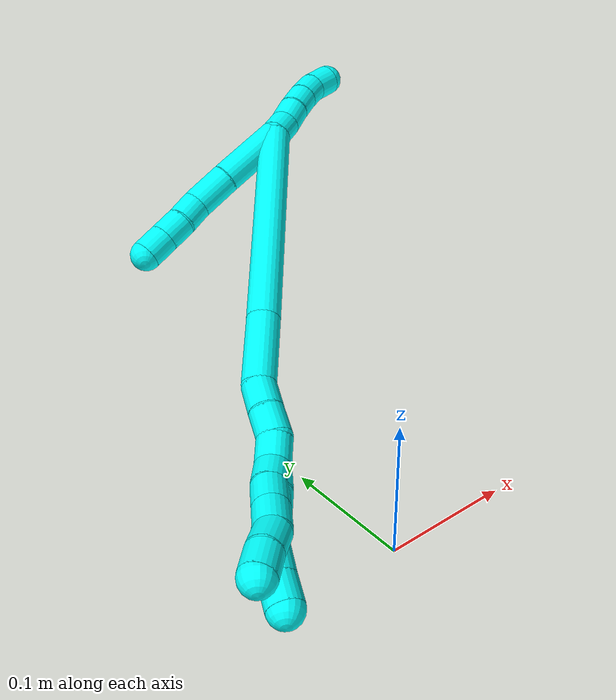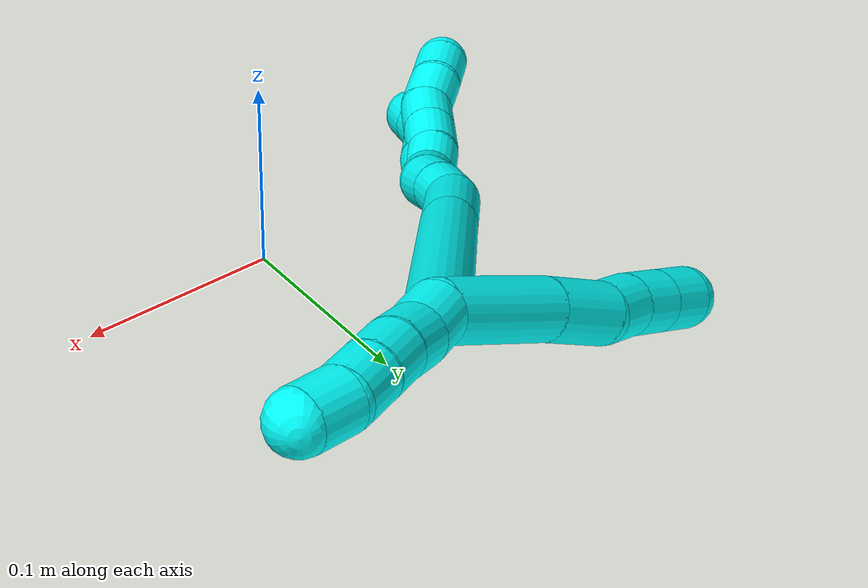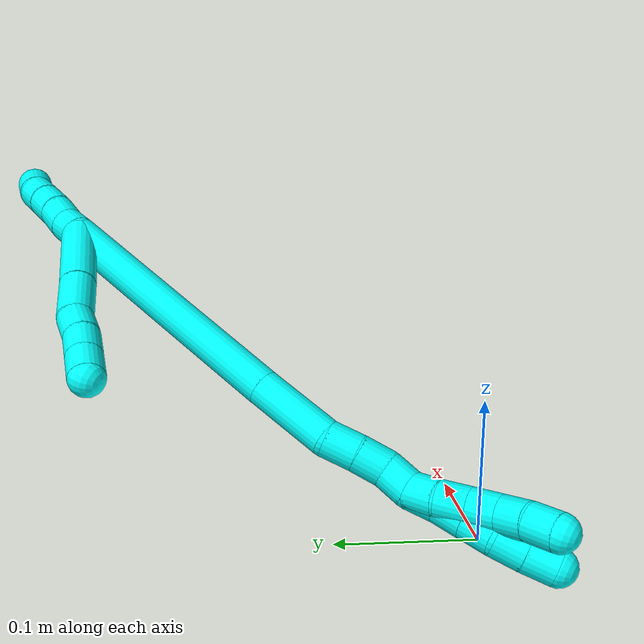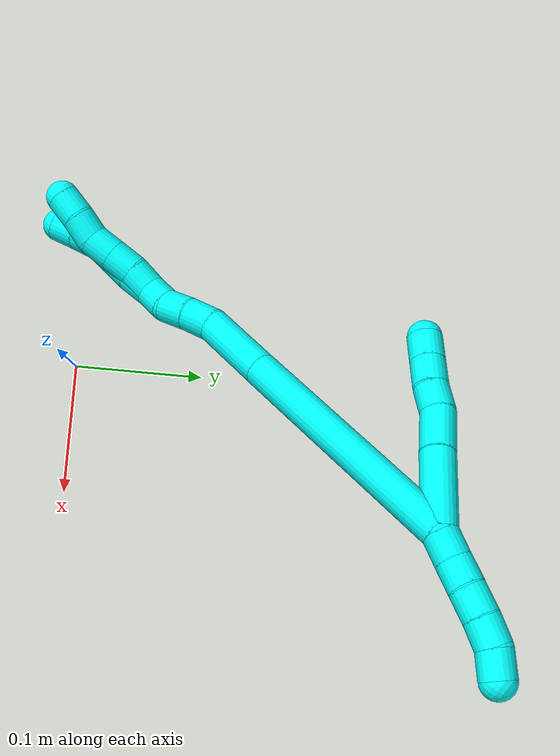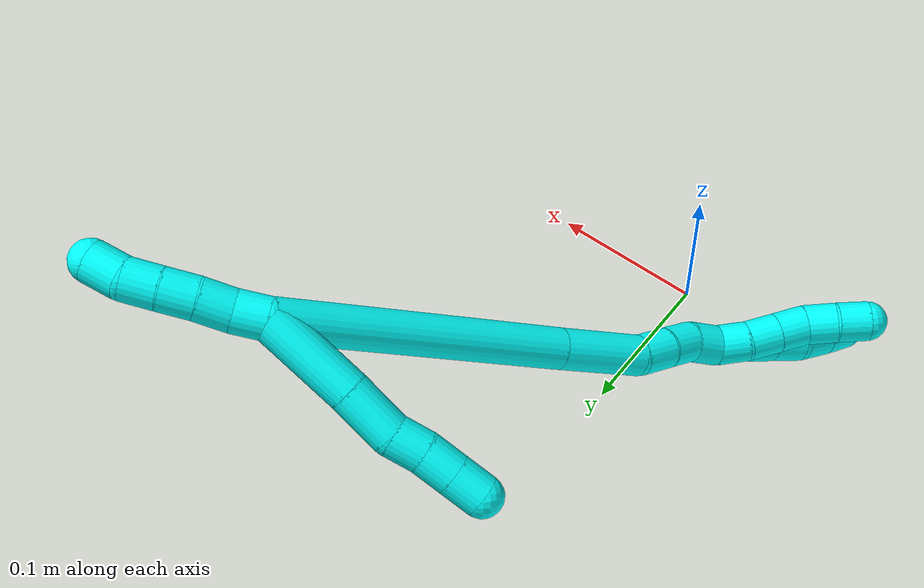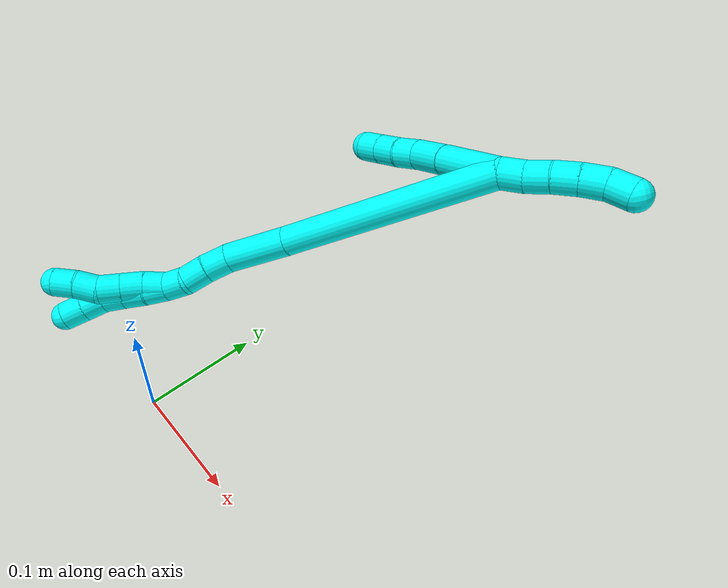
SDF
<sdf version="1.7">
 <world name="default">
  <model name="3">
   <static>0</static>
   <link name="3">
    <collision name="collision-cylinder-e_1_2_8">
     <pose>0.014991 -0.016819 -0.017584 2.37841 0.552167 1.22959</pose>
     <geometry><cylinder><radius>0.0125</radius><length>0.05716</length></cylinder></geometry>
     <surface>
      <friction><ode><mu>1.16</mu><mu2>1.16</mu2><slip1>0</slip1><slip2>0</slip2></ode></friction>
      <contact><ode><kp>1e+06</kp><kd>1</kd><max_vel>0</max_vel><min_depth>0.001</min_depth></ode></contact>
     </surface>
    </collision>
    <visual name="visual-cylinder-e_1_2_8">
     <pose>0.014991 -0.016819 -0.017584 2.37841 0.552167 1.22959</pose>
     <geometry><cylinder><radius>0.0125</radius><length>0.05716</length></cylinder></geometry>
     <material><ambient>0.003922 1 0.996078 1</ambient></material>
    </visual>
    <collision name="collision-cylinder-e_2_8_9">
     <pose>0.03819 -0.04404 -0.04475 2.31523 0.525843 1.10118</pose>
     <geometry><cylinder><radius>0.0125</radius><length>0.032703</length></cylinder></geometry>
     <surface>
      <friction><ode><mu>1.16</mu><mu2>1.16</mu2><slip1>0</slip1><slip2>0</slip2></ode></friction>
      <contact><ode><kp>1e+06</kp><kd>1</kd><max_vel>0</max_vel><min_depth>0.001</min_depth></ode></contact>
     </surface>
    </collision>
    <visual name="visual-cylinder-e_2_8_9">
     <pose>0.03819 -0.04404 -0.04475 2.31523 0.525843 1.10118</pose>
     <geometry><cylinder><radius>0.0125</radius><length>0.032703</length></cylinder></geometry>
     <material><ambient>0.003922 1 0.996078 1</ambient></material>
    </visual>
    <collision name="collision-cylinder-e_3_9_10">
     <pose>0.050812 -0.058867 -0.062198 2.6291 0.454876 1.44708</pose>
     <geometry><cylinder><radius>0.0125</radius><length>0.020094</length></cylinder></geometry>
     <surface>
      <friction><ode><mu>1.16</mu><mu2>1.16</mu2><slip1>0</slip1><slip2>0</slip2></ode></friction>
      <contact><ode><kp>1e+06</kp><kd>1</kd><max_vel>0</max_vel><min_depth>0.001</min_depth></ode></contact>
     </surface>
    </collision>
    <visual name="visual-cylinder-e_3_9_10">
     <pose>0.050812 -0.058867 -0.062198 2.6291 0.454876 1.44708</pose>
     <geometry><cylinder><radius>0.0125</radius><length>0.020094</length></cylinder></geometry>
     <material><ambient>0.003922 1 0.996078 1</ambient></material>
    </visual>
    <collision name="collision-cylinder-e_4_10_11">
     <pose>0.060188 -0.068606 -0.076955 2.48477 0.518254 1.3223</pose>
     <geometry><cylinder><radius>0.0125</radius><length>0.020034</length></cylinder></geometry>
     <surface>
      <friction><ode><mu>1.16</mu><mu2>1.16</mu2><slip1>0</slip1><slip2>0</slip2></ode></friction>
      <contact><ode><kp>1e+06</kp><kd>1</kd><max_vel>0</max_vel><min_depth>0.001</min_depth></ode></contact>
     </surface>
    </collision>
    <visual name="visual-cylinder-e_4_10_11">
     <pose>0.060188 -0.068606 -0.076955 2.48477 0.518254 1.3223</pose>
     <geometry><cylinder><radius>0.0125</radius><length>0.020034</length></cylinder></geometry>
     <material><ambient>0.003922 1 0.996078 1</ambient></material>
    </visual>
    <collision name="collision-cylinder-e_5_11_6">
     <pose>0.070114 -0.079226 -0.090723 2.48436 0.519189 1.32349</pose>
     <geometry><cylinder><radius>0.0125</radius><length>0.020009</length></cylinder></geometry>
     <surface>
      <friction><ode><mu>1.16</mu><mu2>1.16</mu2><slip1>0</slip1><slip2>0</slip2></ode></friction>
      <contact><ode><kp>1e+06</kp><kd>1</kd><max_vel>0</max_vel><min_depth>0.001</min_depth></ode></contact>
     </surface>
    </collision>
    <visual name="visual-cylinder-e_5_11_6">
     <pose>0.070114 -0.079226 -0.090723 2.48436 0.519189 1.32349</pose>
     <geometry><cylinder><radius>0.0125</radius><length>0.020009</length></cylinder></geometry>
     <material><ambient>0.003922 1 0.996078 1</ambient></material>
    </visual>
    <collision name="collision-cylinder-e_1_2_12">
     <pose>-0.004191 0.001687 0.008921 -0.186862 -0.432462 0.041161</pose>
     <geometry><cylinder><radius>0.0125</radius><length>0.02</length></cylinder></geometry>
     <surface>
      <friction><ode><mu>1.16</mu><mu2>1.16</mu2><slip1>0</slip1><slip2>0</slip2></ode></friction>
      <contact><ode><kp>1e+06</kp><kd>1</kd><max_vel>0</max_vel><min_depth>0.001</min_depth></ode></contact>
     </surface>
    </collision>
    <visual name="visual-cylinder-e_1_2_12">
     <pose>-0.004191 0.001687 0.008921 -0.186862 -0.432462 0.041161</pose>
     <geometry><cylinder><radius>0.0125</radius><length>0.02</length></cylinder></geometry>
     <material><ambient>0.003922 1 0.996078 1</ambient></material>
    </visual>
    <collision name="collision-cylinder-e_2_12_13">
     <pose>-0.011637 0.006643 0.026715 -0.353089 -0.331538 0.059677</pose>
     <geometry><cylinder><radius>0.0125</radius><length>0.02</length></cylinder></geometry>
     <surface>
      <friction><ode><mu>1.16</mu><mu2>1.16</mu2><slip1>0</slip1><slip2>0</slip2></ode></friction>
      <contact><ode><kp>1e+06</kp><kd>1</kd><max_vel>0</max_vel><min_depth>0.001</min_depth></ode></contact>
     </surface>
    </collision>
    <visual name="visual-cylinder-e_2_12_13">
     <pose>-0.011637 0.006643 0.026715 -0.353089 -0.331538 0.059677</pose>
     <geometry><cylinder><radius>0.0125</radius><length>0.02</length></cylinder></geometry>
     <material><ambient>0.003922 1 0.996078 1</ambient></material>
    </visual>
    <collision name="collision-cylinder-e_3_13_14">
     <pose>-0.018691 0.012179 0.044555 -0.247506 -0.38963 0.049078</pose>
     <geometry><cylinder><radius>0.0125</radius><length>0.02</length></cylinder></geometry>
     <surface>
      <friction><ode><mu>1.16</mu><mu2>1.16</mu2><slip1>0</slip1><slip2>0</slip2></ode></friction>
      <contact><ode><kp>1e+06</kp><kd>1</kd><max_vel>0</max_vel><min_depth>0.001</min_depth></ode></contact>
     </surface>
    </collision>
    <visual name="visual-cylinder-e_3_13_14">
     <pose>-0.018691 0.012179 0.044555 -0.247506 -0.38963 0.049078</pose>
     <geometry><cylinder><radius>0.0125</radius><length>0.02</length></cylinder></geometry>
     <material><ambient>0.003922 1 0.996078 1</ambient></material>
    </visual>
    <collision name="collision-cylinder-e_4_14_15">
     <pose>-0.027016 0.016412 0.062221 -0.222356 -0.46977 0.053418</pose>
     <geometry><cylinder><radius>0.0125</radius><length>0.02</length></cylinder></geometry>
     <surface>
      <friction><ode><mu>1.16</mu><mu2>1.16</mu2><slip1>0</slip1><slip2>0</slip2></ode></friction>
      <contact><ode><kp>1e+06</kp><kd>1</kd><max_vel>0</max_vel><min_depth>0.001</min_depth></ode></contact>
     </surface>
    </collision>
    <visual name="visual-cylinder-e_4_14_15">
     <pose>-0.027016 0.016412 0.062221 -0.222356 -0.46977 0.053418</pose>
     <geometry><cylinder><radius>0.0125</radius><length>0.02</length></cylinder></geometry>
     <material><ambient>0.003922 1 0.996078 1</ambient></material>
    </visual>
    <collision name="collision-cylinder-e_5_15_5">
     <pose>-0.038084 0.021313 0.077889 -0.398531 -0.71305 0.150143</pose>
     <geometry><cylinder><radius>0.0125</radius><length>0.02</length></cylinder></geometry>
     <surface>
      <friction><ode><mu>1.16</mu><mu2>1.16</mu2><slip1>0</slip1><slip2>0</slip2></ode></friction>
      <contact><ode><kp>1e+06</kp><kd>1</kd><max_vel>0</max_vel><min_depth>0.001</min_depth></ode></contact>
     </surface>
    </collision>
    <visual name="visual-cylinder-e_5_15_5">
     <pose>-0.038084 0.021313 0.077889 -0.398531 -0.71305 0.150143</pose>
     <geometry><cylinder><radius>0.0125</radius><length>0.02</length></cylinder></geometry>
     <material><ambient>0.003922 1 0.996078 1</ambient></material>
    </visual>
    <collision name="collision-cylinder-e_1_2_16">
     <pose>-0.001527 -0.022756 -0.08793 2.88835 -0.016809 -0.131852</pose>
     <geometry><cylinder><radius>0.0125</radius><length>0.18168</length></cylinder></geometry>
     <surface>
      <friction><ode><mu>1.16</mu><mu2>1.16</mu2><slip1>0</slip1><slip2>0</slip2></ode></friction>
      <contact><ode><kp>1e+06</kp><kd>1</kd><max_vel>0</max_vel><min_depth>0.001</min_depth></ode></contact>
     </surface>
    </collision>
    <visual name="visual-cylinder-e_1_2_16">
     <pose>-0.001527 -0.022756 -0.08793 2.88835 -0.016809 -0.131852</pose>
     <geometry><cylinder><radius>0.0125</radius><length>0.18168</length></cylinder></geometry>
     <material><ambient>0.003922 1 0.996078 1</ambient></material>
    </visual>
    <collision name="collision-cylinder-e_2_16_17">
     <pose>-0.003062 -0.051895 -0.202763 2.90867 -0.000311 -0.00266</pose>
     <geometry><cylinder><radius>0.0125</radius><length>0.055298</length></cylinder></geometry>
     <surface>
      <friction><ode><mu>1.16</mu><mu2>1.16</mu2><slip1>0</slip1><slip2>0</slip2></ode></friction>
      <contact><ode><kp>1e+06</kp><kd>1</kd><max_vel>0</max_vel><min_depth>0.001</min_depth></ode></contact>
     </surface>
    </collision>
    <visual name="visual-cylinder-e_2_16_17">
     <pose>-0.003062 -0.051895 -0.202763 2.90867 -0.000311 -0.00266</pose>
     <geometry><cylinder><radius>0.0125</radius><length>0.055298</length></cylinder></geometry>
     <material><ambient>0.003922 1 0.996078 1</ambient></material>
    </visual>
    <collision name="collision-cylinder-e_3_17_18">
     <pose>-0.005444 -0.058473 -0.240276 3.12307 -0.219996 -2.97423</pose>
     <geometry><cylinder><radius>0.0125</radius><length>0.021748</length></cylinder></geometry>
     <surface>
      <friction><ode><mu>1.16</mu><mu2>1.16</mu2><slip1>0</slip1><slip2>0</slip2></ode></friction>
      <contact><ode><kp>1e+06</kp><kd>1</kd><max_vel>0</max_vel><min_depth>0.001</min_depth></ode></contact>
     </surface>
    </collision>
    <visual name="visual-cylinder-e_3_17_18">
     <pose>-0.005444 -0.058473 -0.240276 3.12307 -0.219996 -2.97423</pose>
     <geometry><cylinder><radius>0.0125</radius><length>0.021748</length></cylinder></geometry>
     <material><ambient>0.003922 1 0.996078 1</ambient></material>
    </visual>
    <collision name="collision-cylinder-e_4_18_19">
     <pose>-0.010853 -0.059478 -0.260804 3.06034 -0.29618 -2.60956</pose>
     <geometry><cylinder><radius>0.0125</radius><length>0.020807</length></cylinder></geometry>
     <surface>
      <friction><ode><mu>1.16</mu><mu2>1.16</mu2><slip1>0</slip1><slip2>0</slip2></ode></friction>
      <contact><ode><kp>1e+06</kp><kd>1</kd><max_vel>0</max_vel><min_depth>0.001</min_depth></ode></contact>
     </surface>
    </collision>
    <visual name="visual-cylinder-e_4_18_19">
     <pose>-0.010853 -0.059478 -0.260804 3.06034 -0.29618 -2.60956</pose>
     <geometry><cylinder><radius>0.0125</radius><length>0.020807</length></cylinder></geometry>
     <material><ambient>0.003922 1 0.996078 1</ambient></material>
    </visual>
    <collision name="collision-cylinder-e_5_19_1">
     <pose>-0.013999 -0.06314 -0.280548 2.85887 -0.010684 -0.075039</pose>
     <geometry><cylinder><radius>0.0125</radius><length>0.020466</length></cylinder></geometry>
     <surface>
      <friction><ode><mu>1.16</mu><mu2>1.16</mu2><slip1>0</slip1><slip2>0</slip2></ode></friction>
      <contact><ode><kp>1e+06</kp><kd>1</kd><max_vel>0</max_vel><min_depth>0.001</min_depth></ode></contact>
     </surface>
    </collision>
    <visual name="visual-cylinder-e_5_19_1">
     <pose>-0.013999 -0.06314 -0.280548 2.85887 -0.010684 -0.075039</pose>
     <geometry><cylinder><radius>0.0125</radius><length>0.020466</length></cylinder></geometry>
     <material><ambient>0.003922 1 0.996078 1</ambient></material>
    </visual>
    <collision name="collision-cylinder-e_1_1_20">
     <pose>-0.014042 -0.066019 -0.300374 3.1391 0.006647 2.42296</pose>
     <geometry><cylinder><radius>0.0125</radius><length>0.02</length></cylinder></geometry>
     <surface>
      <friction><ode><mu>1.16</mu><mu2>1.16</mu2><slip1>0</slip1><slip2>0</slip2></ode></friction>
      <contact><ode><kp>1e+06</kp><kd>1</kd><max_vel>0</max_vel><min_depth>0.001</min_depth></ode></contact>
     </surface>
    </collision>
    <visual name="visual-cylinder-e_1_1_20">
     <pose>-0.014042 -0.066019 -0.300374 3.1391 0.006647 2.42296</pose>
     <geometry><cylinder><radius>0.0125</radius><length>0.02</length></cylinder></geometry>
     <material><ambient>0.003922 1 0.996078 1</ambient></material>
    </visual>
    <collision name="collision-cylinder-e_2_20_21">
     <pose>-0.013182 -0.067056 -0.32029 3.03989 0.079461 1.32613</pose>
     <geometry><cylinder><radius>0.0125</radius><length>0.02</length></cylinder></geometry>
     <surface>
      <friction><ode><mu>1.16</mu><mu2>1.16</mu2><slip1>0</slip1><slip2>0</slip2></ode></friction>
      <contact><ode><kp>1e+06</kp><kd>1</kd><max_vel>0</max_vel><min_depth>0.001</min_depth></ode></contact>
     </surface>
    </collision>
    <visual name="visual-cylinder-e_2_20_21">
     <pose>-0.013182 -0.067056 -0.32029 3.03989 0.079461 1.32613</pose>
     <geometry><cylinder><radius>0.0125</radius><length>0.02</length></cylinder></geometry>
     <material><ambient>0.003922 1 0.996078 1</ambient></material>
    </visual>
    <collision name="collision-cylinder-e_3_21_22">
     <pose>-0.011716 -0.068986 -0.340142 3.04949 0.06728 1.26144</pose>
     <geometry><cylinder><radius>0.0125</radius><length>0.02</length></cylinder></geometry>
     <surface>
      <friction><ode><mu>1.16</mu><mu2>1.16</mu2><slip1>0</slip1><slip2>0</slip2></ode></friction>
      <contact><ode><kp>1e+06</kp><kd>1</kd><max_vel>0</max_vel><min_depth>0.001</min_depth></ode></contact>
     </surface>
    </collision>
    <visual name="visual-cylinder-e_3_21_22">
     <pose>-0.011716 -0.068986 -0.340142 3.04949 0.06728 1.26144</pose>
     <geometry><cylinder><radius>0.0125</radius><length>0.02</length></cylinder></geometry>
     <material><ambient>0.003922 1 0.996078 1</ambient></material>
    </visual>
    <collision name="collision-cylinder-e_4_22_23">
     <pose>-0.013007 -0.070379 -0.359871 3.09312 -0.197629 -2.66192</pose>
     <geometry><cylinder><radius>0.0125</radius><length>0.02</length></cylinder></geometry>
     <surface>
      <friction><ode><mu>1.16</mu><mu2>1.16</mu2><slip1>0</slip1><slip2>0</slip2></ode></friction>
      <contact><ode><kp>1e+06</kp><kd>1</kd><max_vel>0</max_vel><min_depth>0.001</min_depth></ode></contact>
     </surface>
    </collision>
    <visual name="visual-cylinder-e_4_22_23">
     <pose>-0.013007 -0.070379 -0.359871 3.09312 -0.197629 -2.66192</pose>
     <geometry><cylinder><radius>0.0125</radius><length>0.02</length></cylinder></geometry>
     <material><ambient>0.003922 1 0.996078 1</ambient></material>
    </visual>
    <collision name="collision-cylinder-e_5_23_4">
     <pose>-0.017049 -0.070763 -0.379446 -3.13229 -0.209399 3.05311</pose>
     <geometry><cylinder><radius>0.0125</radius><length>0.02</length></cylinder></geometry>
     <surface>
      <friction><ode><mu>1.16</mu><mu2>1.16</mu2><slip1>0</slip1><slip2>0</slip2></ode></friction>
      <contact><ode><kp>1e+06</kp><kd>1</kd><max_vel>0</max_vel><min_depth>0.001</min_depth></ode></contact>
     </surface>
    </collision>
    <visual name="visual-cylinder-e_5_23_4">
     <pose>-0.017049 -0.070763 -0.379446 -3.13229 -0.209399 3.05311</pose>
     <geometry><cylinder><radius>0.0125</radius><length>0.02</length></cylinder></geometry>
     <material><ambient>0.003922 1 0.996078 1</ambient></material>
    </visual>
    <collision name="collision-cylinder-e_1_1_24">
     <pose>-0.011748 -0.064712 -0.300006 -3.00919 0.238357 -2.13029</pose>
     <geometry><cylinder><radius>0.0125</radius><length>0.02</length></cylinder></geometry>
     <surface>
      <friction><ode><mu>1.16</mu><mu2>1.16</mu2><slip1>0</slip1><slip2>0</slip2></ode></friction>
      <contact><ode><kp>1e+06</kp><kd>1</kd><max_vel>0</max_vel><min_depth>0.001</min_depth></ode></contact>
     </surface>
    </collision>
    <visual name="visual-cylinder-e_1_1_24">
     <pose>-0.011748 -0.064712 -0.300006 -3.00919 0.238357 -2.13029</pose>
     <geometry><cylinder><radius>0.0125</radius><length>0.02</length></cylinder></geometry>
     <material><ambient>0.003922 1 0.996078 1</ambient></material>
    </visual>
    <collision name="collision-cylinder-e_2_24_25">
     <pose>-0.008547 -0.061519 -0.319419 -2.94877 0.08401 -0.819937</pose>
     <geometry><cylinder><radius>0.0125</radius><length>0.02</length></cylinder></geometry>
     <surface>
      <friction><ode><mu>1.16</mu><mu2>1.16</mu2><slip1>0</slip1><slip2>0</slip2></ode></friction>
      <contact><ode><kp>1e+06</kp><kd>1</kd><max_vel>0</max_vel><min_depth>0.001</min_depth></ode></contact>
     </surface>
    </collision>
    <visual name="visual-cylinder-e_2_24_25">
     <pose>-0.008547 -0.061519 -0.319419 -2.94877 0.08401 -0.819937</pose>
     <geometry><cylinder><radius>0.0125</radius><length>0.02</length></cylinder></geometry>
     <material><ambient>0.003922 1 0.996078 1</ambient></material>
    </visual>
    <collision name="collision-cylinder-e_3_25_26">
     <pose>-0.006918 -0.057698 -0.338982 -2.94865 0.079065 -0.776025</pose>
     <geometry><cylinder><radius>0.0125</radius><length>0.02</length></cylinder></geometry>
     <surface>
      <friction><ode><mu>1.16</mu><mu2>1.16</mu2><slip1>0</slip1><slip2>0</slip2></ode></friction>
      <contact><ode><kp>1e+06</kp><kd>1</kd><max_vel>0</max_vel><min_depth>0.001</min_depth></ode></contact>
     </surface>
    </collision>
    <visual name="visual-cylinder-e_3_25_26">
     <pose>-0.006918 -0.057698 -0.338982 -2.94865 0.079065 -0.776025</pose>
     <geometry><cylinder><radius>0.0125</radius><length>0.02</length></cylinder></geometry>
     <material><ambient>0.003922 1 0.996078 1</ambient></material>
    </visual>
    <collision name="collision-cylinder-e_4_26_27">
     <pose>-0.00209 -0.054152 -0.357767 -2.9619 0.415675 -2.33415</pose>
     <geometry><cylinder><radius>0.0125</radius><length>0.02</length></cylinder></geometry>
     <surface>
      <friction><ode><mu>1.16</mu><mu2>1.16</mu2><slip1>0</slip1><slip2>0</slip2></ode></friction>
      <contact><ode><kp>1e+06</kp><kd>1</kd><max_vel>0</max_vel><min_depth>0.001</min_depth></ode></contact>
     </surface>
    </collision>
    <visual name="visual-cylinder-e_4_26_27">
     <pose>-0.00209 -0.054152 -0.357767 -2.9619 0.415675 -2.33415</pose>
     <geometry><cylinder><radius>0.0125</radius><length>0.02</length></cylinder></geometry>
     <material><ambient>0.003922 1 0.996078 1</ambient></material>
    </visual>
    <collision name="collision-cylinder-e_5_27_3">
     <pose>0.004923 -0.051811 -0.37629 -3.06758 0.30208 -2.66434</pose>
     <geometry><cylinder><radius>0.0125</radius><length>0.02</length></cylinder></geometry>
     <surface>
      <friction><ode><mu>1.16</mu><mu2>1.16</mu2><slip1>0</slip1><slip2>0</slip2></ode></friction>
      <contact><ode><kp>1e+06</kp><kd>1</kd><max_vel>0</max_vel><min_depth>0.001</min_depth></ode></contact>
     </surface>
    </collision>
    <visual name="visual-cylinder-e_5_27_3">
     <pose>0.004923 -0.051811 -0.37629 -3.06758 0.30208 -2.66434</pose>
     <geometry><cylinder><radius>0.0125</radius><length>0.02</length></cylinder></geometry>
     <material><ambient>0.003922 1 0.996078 1</ambient></material>
    </visual>
    <collision name="collision-sphere-3">
     <pose>0.007898 -0.051105 -0.385811 0 -0 0</pose>
     <geometry><sphere><radius>0.0125</radius></sphere></geometry>
     <surface>
      <friction><ode><mu>1.16</mu><mu2>1.16</mu2><slip1>0</slip1><slip2>0</slip2></ode></friction>
      <contact><ode><kp>1e+06</kp><kd>1</kd><max_vel>0</max_vel><min_depth>0.001</min_depth></ode></contact>
     </surface>
    </collision>
    <visual name="visual-sphere-3">
     <pose>0.007898 -0.051105 -0.385811 0 -0 0</pose>
     <geometry><sphere><radius>0.0125</radius></sphere></geometry>
     <material><ambient>0.003922 1 0.996078 1</ambient></material>
    </visual>
    <collision name="collision-sphere-27">
     <pose>0.001948 -0.052517 -0.366768 0 -0 0</pose>
     <geometry><sphere><radius>0.0125</radius></sphere></geometry>
     <surface>
      <friction><ode><mu>1.16</mu><mu2>1.16</mu2><slip1>0</slip1><slip2>0</slip2></ode></friction>
      <contact><ode><kp>1e+06</kp><kd>1</kd><max_vel>0</max_vel><min_depth>0.001</min_depth></ode></contact>
     </surface>
    </collision>
    <visual name="visual-sphere-27">
     <pose>0.001948 -0.052517 -0.366768 0 -0 0</pose>
     <geometry><sphere><radius>0.0125</radius></sphere></geometry>
     <material><ambient>0.003922 1 0.996078 1</ambient></material>
    </visual>
    <collision name="collision-sphere-26">
     <pose>-0.006129 -0.055787 -0.348766 0 -0 0</pose>
     <geometry><sphere><radius>0.0125</radius></sphere></geometry>
     <surface>
      <friction><ode><mu>1.16</mu><mu2>1.16</mu2><slip1>0</slip1><slip2>0</slip2></ode></friction>
      <contact><ode><kp>1e+06</kp><kd>1</kd><max_vel>0</max_vel><min_depth>0.001</min_depth></ode></contact>
     </surface>
    </collision>
    <visual name="visual-sphere-26">
     <pose>-0.006129 -0.055787 -0.348766 0 -0 0</pose>
     <geometry><sphere><radius>0.0125</radius></sphere></geometry>
     <material><ambient>0.003922 1 0.996078 1</ambient></material>
    </visual>
    <collision name="collision-sphere-25">
     <pose>-0.007708 -0.05961 -0.329199 0 -0 0</pose>
     <geometry><sphere><radius>0.0125</radius></sphere></geometry>
     <surface>
      <friction><ode><mu>1.16</mu><mu2>1.16</mu2><slip1>0</slip1><slip2>0</slip2></ode></friction>
      <contact><ode><kp>1e+06</kp><kd>1</kd><max_vel>0</max_vel><min_depth>0.001</min_depth></ode></contact>
     </surface>
    </collision>
    <visual name="visual-sphere-25">
     <pose>-0.007708 -0.05961 -0.329199 0 -0 0</pose>
     <geometry><sphere><radius>0.0125</radius></sphere></geometry>
     <material><ambient>0.003922 1 0.996078 1</ambient></material>
    </visual>
    <collision name="collision-sphere-24">
     <pose>-0.009386 -0.063429 -0.309638 0 -0 0</pose>
     <geometry><sphere><radius>0.0125</radius></sphere></geometry>
     <surface>
      <friction><ode><mu>1.16</mu><mu2>1.16</mu2><slip1>0</slip1><slip2>0</slip2></ode></friction>
      <contact><ode><kp>1e+06</kp><kd>1</kd><max_vel>0</max_vel><min_depth>0.001</min_depth></ode></contact>
     </surface>
    </collision>
    <visual name="visual-sphere-24">
     <pose>-0.009386 -0.063429 -0.309638 0 -0 0</pose>
     <geometry><sphere><radius>0.0125</radius></sphere></geometry>
     <material><ambient>0.003922 1 0.996078 1</ambient></material>
    </visual>
    <collision name="collision-sphere-4">
     <pose>-0.019128 -0.070672 -0.389228 0 -0 0</pose>
     <geometry><sphere><radius>0.0125</radius></sphere></geometry>
     <surface>
      <friction><ode><mu>1.16</mu><mu2>1.16</mu2><slip1>0</slip1><slip2>0</slip2></ode></friction>
      <contact><ode><kp>1e+06</kp><kd>1</kd><max_vel>0</max_vel><min_depth>0.001</min_depth></ode></contact>
     </surface>
    </collision>
    <visual name="visual-sphere-4">
     <pose>-0.019128 -0.070672 -0.389228 0 -0 0</pose>
     <geometry><sphere><radius>0.0125</radius></sphere></geometry>
     <material><ambient>0.003922 1 0.996078 1</ambient></material>
    </visual>
    <collision name="collision-sphere-23">
     <pose>-0.01497 -0.070854 -0.369665 0 -0 0</pose>
     <geometry><sphere><radius>0.0125</radius></sphere></geometry>
     <surface>
      <friction><ode><mu>1.16</mu><mu2>1.16</mu2><slip1>0</slip1><slip2>0</slip2></ode></friction>
      <contact><ode><kp>1e+06</kp><kd>1</kd><max_vel>0</max_vel><min_depth>0.001</min_depth></ode></contact>
     </surface>
    </collision>
    <visual name="visual-sphere-23">
     <pose>-0.01497 -0.070854 -0.369665 0 -0 0</pose>
     <geometry><sphere><radius>0.0125</radius></sphere></geometry>
     <material><ambient>0.003922 1 0.996078 1</ambient></material>
    </visual>
    <collision name="collision-sphere-22">
     <pose>-0.011044 -0.069904 -0.350078 0 -0 0</pose>
     <geometry><sphere><radius>0.0125</radius></sphere></geometry>
     <surface>
      <friction><ode><mu>1.16</mu><mu2>1.16</mu2><slip1>0</slip1><slip2>0</slip2></ode></friction>
      <contact><ode><kp>1e+06</kp><kd>1</kd><max_vel>0</max_vel><min_depth>0.001</min_depth></ode></contact>
     </surface>
    </collision>
    <visual name="visual-sphere-22">
     <pose>-0.011044 -0.069904 -0.350078 0 -0 0</pose>
     <geometry><sphere><radius>0.0125</radius></sphere></geometry>
     <material><ambient>0.003922 1 0.996078 1</ambient></material>
    </visual>
    <collision name="collision-sphere-21">
     <pose>-0.012388 -0.068069 -0.330207 0 -0 0</pose>
     <geometry><sphere><radius>0.0125</radius></sphere></geometry>
     <surface>
      <friction><ode><mu>1.16</mu><mu2>1.16</mu2><slip1>0</slip1><slip2>0</slip2></ode></friction>
      <contact><ode><kp>1e+06</kp><kd>1</kd><max_vel>0</max_vel><min_depth>0.001</min_depth></ode></contact>
     </surface>
    </collision>
    <visual name="visual-sphere-21">
     <pose>-0.012388 -0.068069 -0.330207 0 -0 0</pose>
     <geometry><sphere><radius>0.0125</radius></sphere></geometry>
     <material><ambient>0.003922 1 0.996078 1</ambient></material>
    </visual>
    <collision name="collision-sphere-20">
     <pose>-0.013976 -0.066044 -0.310374 0 -0 0</pose>
     <geometry><sphere><radius>0.0125</radius></sphere></geometry>
     <surface>
      <friction><ode><mu>1.16</mu><mu2>1.16</mu2><slip1>0</slip1><slip2>0</slip2></ode></friction>
      <contact><ode><kp>1e+06</kp><kd>1</kd><max_vel>0</max_vel><min_depth>0.001</min_depth></ode></contact>
     </surface>
    </collision>
    <visual name="visual-sphere-20">
     <pose>-0.013976 -0.066044 -0.310374 0 -0 0</pose>
     <geometry><sphere><radius>0.0125</radius></sphere></geometry>
     <material><ambient>0.003922 1 0.996078 1</ambient></material>
    </visual>
    <collision name="collision-sphere-6">
     <pose>0.075078 -0.084532 -0.0976 0 -0 0</pose>
     <geometry><sphere><radius>0.0125</radius></sphere></geometry>
     <surface>
      <friction><ode><mu>1.16</mu><mu2>1.16</mu2><slip1>0</slip1><slip2>0</slip2></ode></friction>
      <contact><ode><kp>1e+06</kp><kd>1</kd><max_vel>0</max_vel><min_depth>0.001</min_depth></ode></contact>
     </surface>
    </collision>
    <visual name="visual-sphere-6">
     <pose>0.075078 -0.084532 -0.0976 0 -0 0</pose>
     <geometry><sphere><radius>0.0125</radius></sphere></geometry>
     <material><ambient>0.003922 1 0.996078 1</ambient></material>
    </visual>
    <collision name="collision-sphere-11">
     <pose>0.06515 -0.073919 -0.083847 0 -0 0</pose>
     <geometry><sphere><radius>0.0125</radius></sphere></geometry>
     <surface>
      <friction><ode><mu>1.16</mu><mu2>1.16</mu2><slip1>0</slip1><slip2>0</slip2></ode></friction>
      <contact><ode><kp>1e+06</kp><kd>1</kd><max_vel>0</max_vel><min_depth>0.001</min_depth></ode></contact>
     </surface>
    </collision>
    <visual name="visual-sphere-11">
     <pose>0.06515 -0.073919 -0.083847 0 -0 0</pose>
     <geometry><sphere><radius>0.0125</radius></sphere></geometry>
     <material><ambient>0.003922 1 0.996078 1</ambient></material>
    </visual>
    <collision name="collision-sphere-10">
     <pose>0.055226 -0.063293 -0.070064 0 -0 0</pose>
     <geometry><sphere><radius>0.0125</radius></sphere></geometry>
     <surface>
      <friction><ode><mu>1.16</mu><mu2>1.16</mu2><slip1>0</slip1><slip2>0</slip2></ode></friction>
      <contact><ode><kp>1e+06</kp><kd>1</kd><max_vel>0</max_vel><min_depth>0.001</min_depth></ode></contact>
     </surface>
    </collision>
    <visual name="visual-sphere-10">
     <pose>0.055226 -0.063293 -0.070064 0 -0 0</pose>
     <geometry><sphere><radius>0.0125</radius></sphere></geometry>
     <material><ambient>0.003922 1 0.996078 1</ambient></material>
    </visual>
    <collision name="collision-sphere-9">
     <pose>0.046398 -0.054442 -0.054333 0 -0 0</pose>
     <geometry><sphere><radius>0.0125</radius></sphere></geometry>
     <surface>
      <friction><ode><mu>1.16</mu><mu2>1.16</mu2><slip1>0</slip1><slip2>0</slip2></ode></friction>
      <contact><ode><kp>1e+06</kp><kd>1</kd><max_vel>0</max_vel><min_depth>0.001</min_depth></ode></contact>
     </surface>
    </collision>
    <visual name="visual-sphere-9">
     <pose>0.046398 -0.054442 -0.054333 0 -0 0</pose>
     <geometry><sphere><radius>0.0125</radius></sphere></geometry>
     <material><ambient>0.003922 1 0.996078 1</ambient></material>
    </visual>
    <collision name="collision-sphere-2">
     <geometry><sphere><radius>0.0125</radius></sphere></geometry>
     <surface>
      <friction><ode><mu>1.16</mu><mu2>1.16</mu2><slip1>0</slip1><slip2>0</slip2></ode></friction>
      <contact><ode><kp>1e+06</kp><kd>1</kd><max_vel>0</max_vel><min_depth>0.001</min_depth></ode></contact>
     </surface>
    </collision>
    <visual name="visual-sphere-2">
     <geometry><sphere><radius>0.0125</radius></sphere></geometry>
     <material><ambient>0.003922 1 0.996078 1</ambient></material>
    </visual>
    <collision name="collision-sphere-19">
     <pose>-0.01389 -0.060285 -0.270722 0 -0 0</pose>
     <geometry><sphere><radius>0.0125</radius></sphere></geometry>
     <surface>
      <friction><ode><mu>1.16</mu><mu2>1.16</mu2><slip1>0</slip1><slip2>0</slip2></ode></friction>
      <contact><ode><kp>1e+06</kp><kd>1</kd><max_vel>0</max_vel><min_depth>0.001</min_depth></ode></contact>
     </surface>
    </collision>
    <visual name="visual-sphere-19">
     <pose>-0.01389 -0.060285 -0.270722 0 -0 0</pose>
     <geometry><sphere><radius>0.0125</radius></sphere></geometry>
     <material><ambient>0.003922 1 0.996078 1</ambient></material>
    </visual>
    <collision name="collision-sphere-8">
     <pose>0.029982 -0.033639 -0.035168 0 -0 0</pose>
     <geometry><sphere><radius>0.0125</radius></sphere></geometry>
     <surface>
      <friction><ode><mu>1.16</mu><mu2>1.16</mu2><slip1>0</slip1><slip2>0</slip2></ode></friction>
      <contact><ode><kp>1e+06</kp><kd>1</kd><max_vel>0</max_vel><min_depth>0.001</min_depth></ode></contact>
     </surface>
    </collision>
    <visual name="visual-sphere-8">
     <pose>0.029982 -0.033639 -0.035168 0 -0 0</pose>
     <geometry><sphere><radius>0.0125</radius></sphere></geometry>
     <material><ambient>0.003922 1 0.996078 1</ambient></material>
    </visual>
    <collision name="collision-sphere-12">
     <pose>-0.008382 0.003373 0.017843 0 -0 0</pose>
     <geometry><sphere><radius>0.0125</radius></sphere></geometry>
     <surface>
      <friction><ode><mu>1.16</mu><mu2>1.16</mu2><slip1>0</slip1><slip2>0</slip2></ode></friction>
      <contact><ode><kp>1e+06</kp><kd>1</kd><max_vel>0</max_vel><min_depth>0.001</min_depth></ode></contact>
     </surface>
    </collision>
    <visual name="visual-sphere-12">
     <pose>-0.008382 0.003373 0.017843 0 -0 0</pose>
     <geometry><sphere><radius>0.0125</radius></sphere></geometry>
     <material><ambient>0.003922 1 0.996078 1</ambient></material>
    </visual>
    <collision name="collision-sphere-13">
     <pose>-0.014892 0.009913 0.035587 0 -0 0</pose>
     <geometry><sphere><radius>0.0125</radius></sphere></geometry>
     <surface>
      <friction><ode><mu>1.16</mu><mu2>1.16</mu2><slip1>0</slip1><slip2>0</slip2></ode></friction>
      <contact><ode><kp>1e+06</kp><kd>1</kd><max_vel>0</max_vel><min_depth>0.001</min_depth></ode></contact>
     </surface>
    </collision>
    <visual name="visual-sphere-13">
     <pose>-0.014892 0.009913 0.035587 0 -0 0</pose>
     <geometry><sphere><radius>0.0125</radius></sphere></geometry>
     <material><ambient>0.003922 1 0.996078 1</ambient></material>
    </visual>
    <collision name="collision-sphere-14">
     <pose>-0.022489 0.014445 0.053524 0 -0 0</pose>
     <geometry><sphere><radius>0.0125</radius></sphere></geometry>
     <surface>
      <friction><ode><mu>1.16</mu><mu2>1.16</mu2><slip1>0</slip1><slip2>0</slip2></ode></friction>
      <contact><ode><kp>1e+06</kp><kd>1</kd><max_vel>0</max_vel><min_depth>0.001</min_depth></ode></contact>
     </surface>
    </collision>
    <visual name="visual-sphere-14">
     <pose>-0.022489 0.014445 0.053524 0 -0 0</pose>
     <geometry><sphere><radius>0.0125</radius></sphere></geometry>
     <material><ambient>0.003922 1 0.996078 1</ambient></material>
    </visual>
    <collision name="collision-sphere-15">
     <pose>-0.031543 0.018378 0.070918 0 -0 0</pose>
     <geometry><sphere><radius>0.0125</radius></sphere></geometry>
     <surface>
      <friction><ode><mu>1.16</mu><mu2>1.16</mu2><slip1>0</slip1><slip2>0</slip2></ode></friction>
      <contact><ode><kp>1e+06</kp><kd>1</kd><max_vel>0</max_vel><min_depth>0.001</min_depth></ode></contact>
     </surface>
    </collision>
    <visual name="visual-sphere-15">
     <pose>-0.031543 0.018378 0.070918 0 -0 0</pose>
     <geometry><sphere><radius>0.0125</radius></sphere></geometry>
     <material><ambient>0.003922 1 0.996078 1</ambient></material>
    </visual>
    <collision name="collision-sphere-5">
     <pose>-0.044626 0.024249 0.08486 0 -0 0</pose>
     <geometry><sphere><radius>0.0125</radius></sphere></geometry>
     <surface>
      <friction><ode><mu>1.16</mu><mu2>1.16</mu2><slip1>0</slip1><slip2>0</slip2></ode></friction>
      <contact><ode><kp>1e+06</kp><kd>1</kd><max_vel>0</max_vel><min_depth>0.001</min_depth></ode></contact>
     </surface>
    </collision>
    <visual name="visual-sphere-5">
     <pose>-0.044626 0.024249 0.08486 0 -0 0</pose>
     <geometry><sphere><radius>0.0125</radius></sphere></geometry>
     <material><ambient>0.003922 1 0.996078 1</ambient></material>
    </visual>
    <collision name="collision-sphere-16">
     <pose>-0.003054 -0.045513 -0.175861 0 -0 0</pose>
     <geometry><sphere><radius>0.0125</radius></sphere></geometry>
     <surface>
      <friction><ode><mu>1.16</mu><mu2>1.16</mu2><slip1>0</slip1><slip2>0</slip2></ode></friction>
      <contact><ode><kp>1e+06</kp><kd>1</kd><max_vel>0</max_vel><min_depth>0.001</min_depth></ode></contact>
     </surface>
    </collision>
    <visual name="visual-sphere-16">
     <pose>-0.003054 -0.045513 -0.175861 0 -0 0</pose>
     <geometry><sphere><radius>0.0125</radius></sphere></geometry>
     <material><ambient>0.003922 1 0.996078 1</ambient></material>
    </visual>
    <collision name="collision-sphere-17">
     <pose>-0.003071 -0.058277 -0.229666 0 -0 0</pose>
     <geometry><sphere><radius>0.0125</radius></sphere></geometry>
     <surface>
      <friction><ode><mu>1.16</mu><mu2>1.16</mu2><slip1>0</slip1><slip2>0</slip2></ode></friction>
      <contact><ode><kp>1e+06</kp><kd>1</kd><max_vel>0</max_vel><min_depth>0.001</min_depth></ode></contact>
     </surface>
    </collision>
    <visual name="visual-sphere-17">
     <pose>-0.003071 -0.058277 -0.229666 0 -0 0</pose>
     <geometry><sphere><radius>0.0125</radius></sphere></geometry>
     <material><ambient>0.003922 1 0.996078 1</ambient></material>
    </visual>
    <collision name="collision-sphere-18">
     <pose>-0.007817 -0.05867 -0.250886 0 -0 0</pose>
     <geometry><sphere><radius>0.0125</radius></sphere></geometry>
     <surface>
      <friction><ode><mu>1.16</mu><mu2>1.16</mu2><slip1>0</slip1><slip2>0</slip2></ode></friction>
      <contact><ode><kp>1e+06</kp><kd>1</kd><max_vel>0</max_vel><min_depth>0.001</min_depth></ode></contact>
     </surface>
    </collision>
    <visual name="visual-sphere-18">
     <pose>-0.007817 -0.05867 -0.250886 0 -0 0</pose>
     <geometry><sphere><radius>0.0125</radius></sphere></geometry>
     <material><ambient>0.003922 1 0.996078 1</ambient></material>
    </visual>
    <collision name="collision-sphere-1">
     <pose>-0.014109 -0.065994 -0.290374 0 -0 0</pose>
     <geometry><sphere><radius>0.0125</radius></sphere></geometry>
     <surface>
      <friction><ode><mu>1.16</mu><mu2>1.16</mu2><slip1>0</slip1><slip2>0</slip2></ode></friction>
      <contact><ode><kp>1e+06</kp><kd>1</kd><max_vel>0</max_vel><min_depth>0.001</min_depth></ode></contact>
     </surface>
    </collision>
    <visual name="visual-sphere-1">
     <pose>-0.014109 -0.065994 -0.290374 0 -0 0</pose>
     <geometry><sphere><radius>0.0125</radius></sphere></geometry>
     <material><ambient>0.003922 1 0.996078 1</ambient></material>
    </visual>
    <inertial>
     <pose>0.001064 -0.038463 -0.152137 0 -0 0</pose>
     <mass>0.75</mass>
     <inertia>
      <ixx>0.000482</ixx>
      <ixy>0</ixy>
      <ixz>0</ixz>
      <iyy>-0.000544</iyy>
      <iyz>0</iyz>
      <izz>0.000103</izz>
     </inertia>
    </inertial>
   </link>
   <pose>0.107512 0.269841 0.196317 1.2956 -0.441271 2.66503</pose>
  </model>
 </world>
</sdf>
